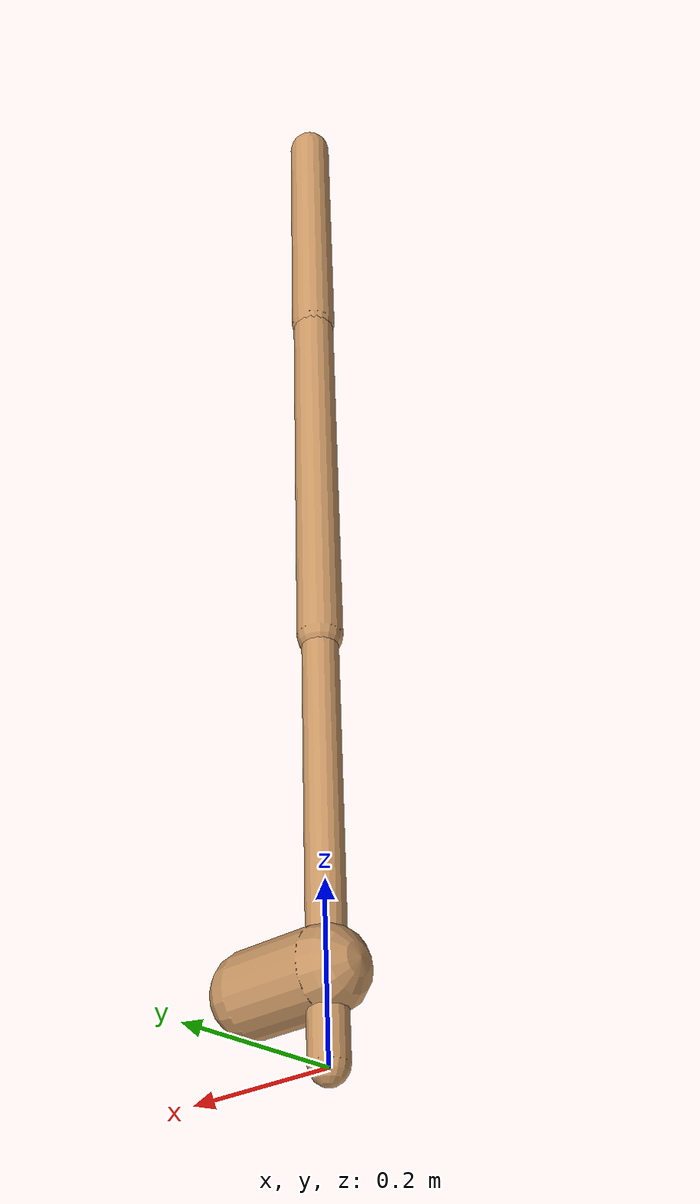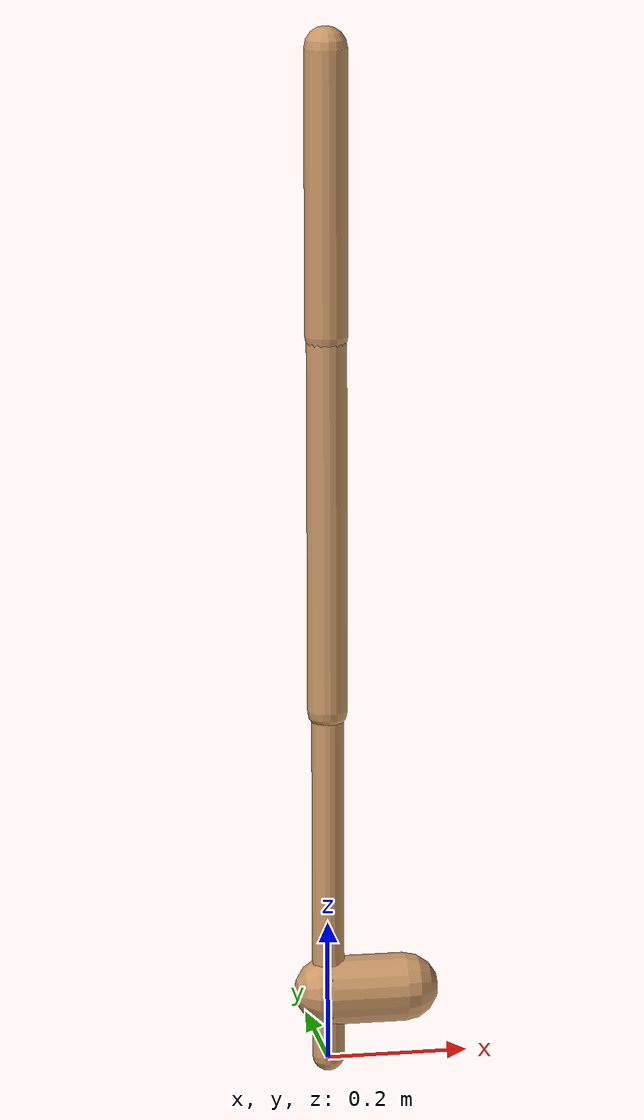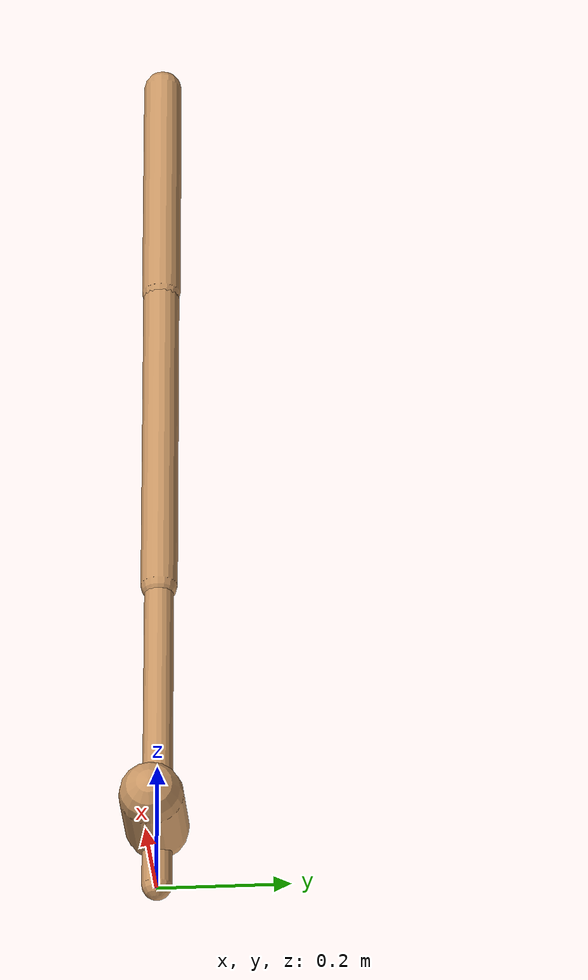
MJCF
<mujoco model="walker2d">
  <compiler angle="degree" coordinate="global" inertiafromgeom="true" />
  <default>
    <joint armature="0.01" damping=".1" limited="true" />
    <geom conaffinity="0" condim="3" contype="1" density="1000" friction="0.8 .1 .1" rgba="0.8 0.6 .4 1" />
  </default>
  <option integrator="RK4" timestep="0.002" />
  <worldbody>

    <body name="torso" pos="0 0 0.18177349627762285">
      <joint armature="0" axis="1 0 0" damping="0" limited="false" name="ignorex" pos="0 0 0" stiffness="0" type="slide" />
      <joint armature="0" axis="0 0 1" damping="0" limited="false" name="ignorez" pos="0 0 0" ref="1.25" stiffness="0" type="slide" />
      <joint armature="0" axis="0 1 0" damping="0" limited="false" name="ignorey" pos="0 0 0" stiffness="0" type="hinge" />
      <geom fromto="0 0 1.45 0 0 1.05" name="torso_geom" size="0.030659950222909182" type="capsule" />
      <body name="thigh">
        <joint axis="0 -1 0" name="thigh_joint" pos="0 0 1.05" range="-150 0" type="hinge" />
        <geom fromto="0.0 0.0 1.05 0.0 0.0 0.513896764921126" name="thigh_geom" size="0.028607164072856208" type="capsule" />
        <body name="leg" pos="0.0 0.0 -0.08610323507887396">
          <joint axis="0 -1 0" name="leg_joint" pos="0 0 0.6" range="-150 0" type="hinge" />
          <geom fromto="0.0 0.0 0.6 0.0 0.0 0.004329738801251148" name="leg_geom" size="0.022885731258284966" type="capsule" />
          <body name="foot" pos="0.0 0.0 -0.09567026119874886">
            <joint axis="0 -1 0" name="foot_joint" pos="0 0 0.1" range="-45 45" type="hinge" />
            <geom fromto="0.0 0.0 0.1 0.10938322188142054 0.0 0.1" name="foot_geom" size="0.048563458219259066" type="capsule" />
          </body>
        </body>
      </body>

      <body name="thigh_left">
        <joint axis="0 -1 0" name="thigh_left_joint" pos="0 0 1.05" range="-150 0" type="hinge" />
        <geom fromto="0.0 0.0 1.05 0.0 0.0 0.513896764921126" name="thigh_left_geom" rgba=".7 .3 .6 1" size="0.028607164072856208" type="capsule" />
        <body name="leg_left" pos="0.0 0.0 -0.08610323507887396">
          <joint axis="0 -1 0" name="leg_left_joint" pos="0 0 0.6" range="-150 0" type="hinge" />
          <geom fromto="0.0 0.0 0.6 0.0 0.0 0.004329738801251148" name="leg_left_geom" rgba=".7 .3 .6 1" size="0.022885731258284966" type="capsule" />
          <body name="foot_left" pos="0.0 0.0 -0.09567026119874886">
            <joint axis="0 -1 0" name="foot_left_joint" pos="0 0 0.1" range="-45 45" type="hinge" />
            <geom fromto="0.0 0.0 0.1 0.10938322188142054 0.0 0.1" name="foot_left_geom" rgba=".7 .3 .6 1" size="0.048563458219259066" type="capsule" />
          </body>
        </body>
      </body>
    </body>
  </worldbody>
  <actuator>

    <motor ctrllimited="true" ctrlrange="-1.0 1.0" gear="100" joint="thigh_joint" />
    <motor ctrllimited="true" ctrlrange="-1.0 1.0" gear="100" joint="leg_joint" />
    <motor ctrllimited="true" ctrlrange="-1.0 1.0" gear="100" joint="foot_joint" />
    <motor ctrllimited="true" ctrlrange="-1.0 1.0" gear="100" joint="thigh_left_joint" />
    <motor ctrllimited="true" ctrlrange="-1.0 1.0" gear="100" joint="leg_left_joint" />
    <motor ctrllimited="true" ctrlrange="-1.0 1.0" gear="100" joint="foot_left_joint" />

  </actuator>
</mujoco>
